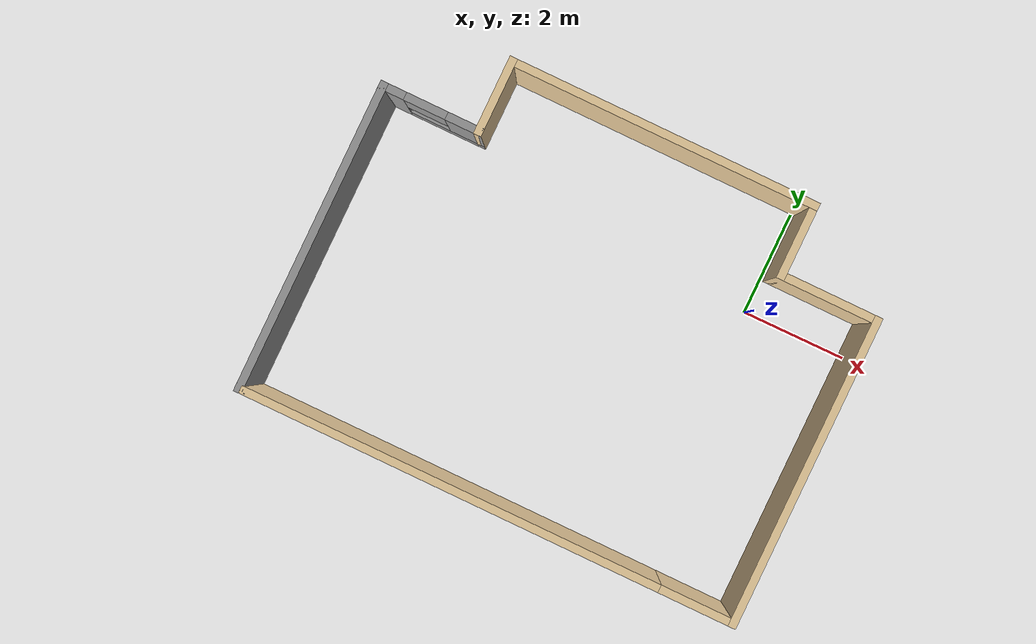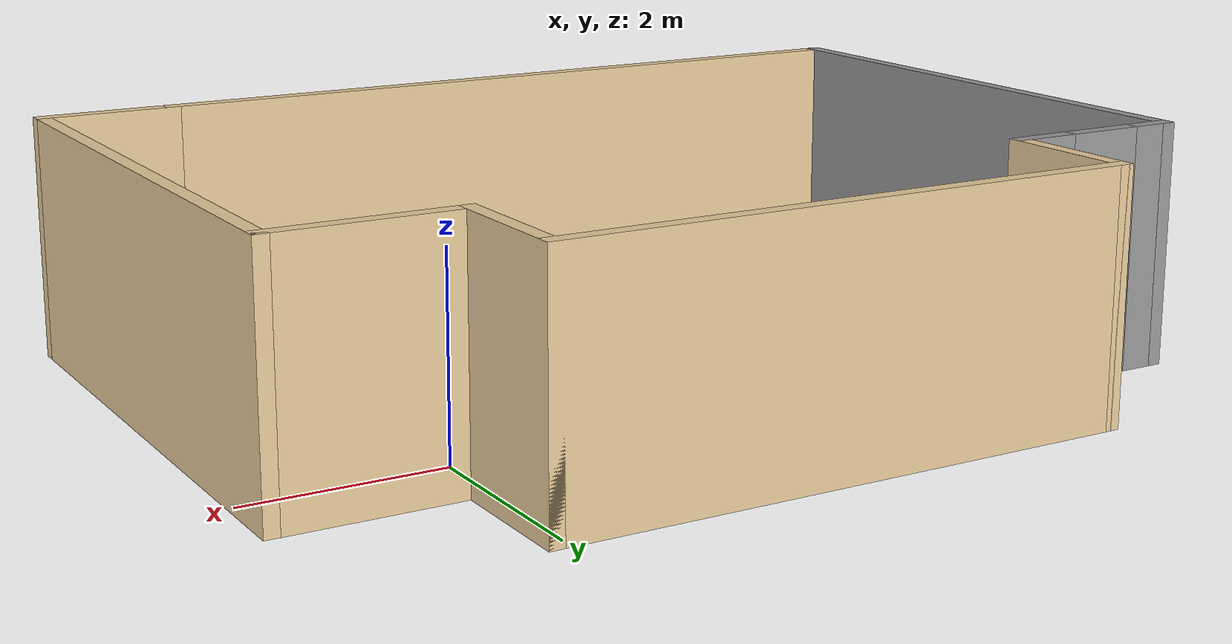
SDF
<?xml version='1.0'?>
<sdf version='1.6'>
  <model name='mybuilding'>
    <pose frame=''>-2.7919 -1.51851 0 0 -0 0</pose>
    <link name='Wall_10'>
      <collision name='Wall_10_Collision'>
        <geometry>
          <box>
            <size>6 0.15 2.5</size>
          </box>
        </geometry>
        <pose frame=''>0 0 1.25 0 -0 0</pose>
      </collision>
      <visual name='Wall_10_Visual'>
        <pose frame=''>0 0 1.25 0 -0 0</pose>
        <geometry>
          <box>
            <size>6 0.15 2.5</size>
          </box>
        </geometry>
        <material>
          <script>
            <uri>file://media/materials/scripts/gazebo.material</uri>
            <name>Gazebo/Grey</name>
          </script>
          <ambient>0.921569 0.807843 0.615686 1</ambient>
        </material>
      </visual>
      <pose frame=''>4.775 -0.674786 0 0 0 -1.5708</pose>
    </link>
    <link name='Wall_11'>
      <collision name='Wall_11_Collision'>
        <geometry>
          <box>
            <size>1.5 0.15 2.5</size>
          </box>
        </geometry>
        <pose frame=''>0 0 1.25 0 -0 0</pose>
      </collision>
      <visual name='Wall_11_Visual'>
        <pose frame=''>0 0 1.25 0 -0 0</pose>
        <geometry>
          <box>
            <size>1.5 0.15 2.5</size>
          </box>
        </geometry>
        <material>
          <script>
            <uri>file://media/materials/scripts/gazebo.material</uri>
            <name>Gazebo/Grey</name>
          </script>
          <ambient>0.921569 0.807843 0.615686 1</ambient>
        </material>
      </visual>
      <pose frame=''>4.1 -3.59979 0 0 -0 3.14159</pose>
    </link>
    <link name='Wall_12'>
      <collision name='Wall_12_Collision'>
        <geometry>
          <box>
            <size>8.25 0.15 2.5</size>
          </box>
        </geometry>
        <pose frame=''>0 0 1.25 0 -0 0</pose>
      </collision>
      <visual name='Wall_12_Visual'>
        <pose frame=''>0 0 1.25 0 -0 0</pose>
        <geometry>
          <box>
            <size>8.25 0.15 2.5</size>
          </box>
        </geometry>
        <material>
          <script>
            <uri>file://media/materials/scripts/gazebo.material</uri>
            <name>Gazebo/Grey</name>
          </script>
          <ambient>0.921569 0.807843 0.615686 1</ambient>
        </material>
      </visual>
      <pose frame=''>-0.625 -3.59979 0 0 -0 3.14159</pose>
    </link>
    <link name='Wall_13'>
      <collision name='Wall_13_Collision'>
        <geometry>
          <box>
            <size>0.15 0.15 2.5</size>
          </box>
        </geometry>
        <pose frame=''>0 0 1.25 0 -0 0</pose>
      </collision>
      <visual name='Wall_13_Visual'>
        <pose frame=''>0 0 1.25 0 -0 0</pose>
        <geometry>
          <box>
            <size>0.15 0.15 2.5</size>
          </box>
        </geometry>
        <material>
          <script>
            <uri>file://media/materials/scripts/gazebo.material</uri>
            <name>Gazebo/Grey</name>
          </script>
          <ambient>1 1 1 1</ambient>
        </material>
      </visual>
      <pose frame=''>-4.675 -3.59979 0 0 -0 0</pose>
    </link>
    <link name='Wall_14'>
      <collision name='Wall_14_Collision'>
        <geometry>
          <box>
            <size>0.25 0.15 2.5</size>
          </box>
        </geometry>
        <pose frame=''>0 0 1.25 0 -0 0</pose>
      </collision>
      <visual name='Wall_14_Visual'>
        <pose frame=''>0 0 1.25 0 -0 0</pose>
        <geometry>
          <box>
            <size>0.25 0.15 2.5</size>
          </box>
        </geometry>
        <material>
          <script>
            <uri>file://media/materials/scripts/gazebo.material</uri>
            <name>Gazebo/Grey</name>
          </script>
          <ambient>1 1 1 1</ambient>
        </material>
      </visual>
      <pose frame=''>-4.725 -3.59979 0 0 -0 3.14159</pose>
    </link>
    <link name='Wall_17'>
      <collision name='Wall_17_Collision'>
        <geometry>
          <box>
            <size>6.00085 0.15 2.5</size>
          </box>
        </geometry>
        <pose frame=''>0 0 1.25 0 -0 0</pose>
      </collision>
      <visual name='Wall_17_Visual'>
        <pose frame=''>0 0 1.25 0 -0 0</pose>
        <geometry>
          <box>
            <size>6.00085 0.15 2.5</size>
          </box>
        </geometry>
        <material>
          <script>
            <uri>file://media/materials/scripts/gazebo.material</uri>
            <name>Gazebo/Grey</name>
          </script>
          <ambient>1 1 1 1</ambient>
        </material>
      </visual>
      <pose frame=''>-4.775 -0.674786 0 0 0 -1.5708</pose>
    </link>
    <link name='Wall_19'>
      <pose frame=''>-3.85 2.25021 0 0 -0 0</pose>
      <visual name='Wall_19_Visual_0'>
        <pose frame=''>-0.750172 0 1.25 0 -0 0</pose>
        <geometry>
          <box>
            <size>0.499656 0.15 2.5</size>
          </box>
        </geometry>
        <material>
          <script>
            <uri>file://media/materials/scripts/gazebo.material</uri>
            <name>Gazebo/Grey</name>
          </script>
          <ambient>1 1 1 1</ambient>
        </material>
      </visual>
      <collision name='Wall_19_Collision_0'>
        <geometry>
          <box>
            <size>0.499656 0.15 2.5</size>
          </box>
        </geometry>
        <pose frame=''>-0.750172 0 1.25 0 -0 0</pose>
      </collision>
      <visual name='Wall_19_Visual_1'>
        <pose frame=''>0.249828 0 0.25 0 -0 0</pose>
        <geometry>
          <box>
            <size>1.50034 0.15 0.5</size>
          </box>
        </geometry>
        <material>
          <script>
            <uri>file://media/materials/scripts/gazebo.material</uri>
            <name>Gazebo/Grey</name>
          </script>
          <ambient>1 1 1 1</ambient>
        </material>
      </visual>
      <collision name='Wall_19_Collision_1'>
        <geometry>
          <box>
            <size>1.50034 0.15 0.5</size>
          </box>
        </geometry>
        <pose frame=''>0.249828 0 0.25 0 -0 0</pose>
      </collision>
      <visual name='Wall_19_Visual_2'>
        <pose frame=''>0.649828 0 1.5 0 -0 0</pose>
        <geometry>
          <box>
            <size>0.700344 0.15 2</size>
          </box>
        </geometry>
        <material>
          <script>
            <uri>file://media/materials/scripts/gazebo.material</uri>
            <name>Gazebo/Grey</name>
          </script>
          <ambient>1 1 1 1</ambient>
        </material>
      </visual>
      <collision name='Wall_19_Collision_2'>
        <geometry>
          <box>
            <size>0.700344 0.15 2</size>
          </box>
        </geometry>
        <pose frame=''>0.649828 0 1.5 0 -0 0</pose>
      </collision>
      <visual name='Wall_19_Visual_3'>
        <pose frame=''>-0.100344 0 1.9 0 -0 0</pose>
        <geometry>
          <box>
            <size>0.8 0.15 1.2</size>
          </box>
        </geometry>
        <material>
          <script>
            <uri>file://media/materials/scripts/gazebo.material</uri>
            <name>Gazebo/Grey</name>
          </script>
          <ambient>1 1 1 1</ambient>
        </material>
      </visual>
      <collision name='Wall_19_Collision_3'>
        <geometry>
          <box>
            <size>0.8 0.15 1.2</size>
          </box>
        </geometry>
        <pose frame=''>-0.100344 0 1.9 0 -0 0</pose>
      </collision>
    </link>
    <link name='Wall_6'>
      <collision name='Wall_6_Collision'>
        <geometry>
          <box>
            <size>1.5 0.15 2.5</size>
          </box>
        </geometry>
        <pose frame=''>0 0 1.25 0 -0 0</pose>
      </collision>
      <visual name='Wall_6_Visual'>
        <pose frame=''>0 0 1.25 0 -0 0</pose>
        <geometry>
          <box>
            <size>1.5 0.15 2.5</size>
          </box>
        </geometry>
        <material>
          <script>
            <uri>file://media/materials/scripts/gazebo.material</uri>
            <name>Gazebo/Grey</name>
          </script>
          <ambient>0.921569 0.807843 0.615686 1</ambient>
        </material>
      </visual>
      <pose frame=''>-2.925 2.92521 0 0 -0 1.5708</pose>
    </link>
    <link name='Wall_7'>
      <collision name='Wall_7_Collision'>
        <geometry>
          <box>
            <size>6 0.15 2.5</size>
          </box>
        </geometry>
        <pose frame=''>0 0 1.25 0 -0 0</pose>
      </collision>
      <visual name='Wall_7_Visual'>
        <pose frame=''>0 0 1.25 0 -0 0</pose>
        <geometry>
          <box>
            <size>6 0.15 2.5</size>
          </box>
        </geometry>
        <material>
          <script>
            <uri>file://media/materials/scripts/gazebo.material</uri>
            <name>Gazebo/Grey</name>
          </script>
          <ambient>0.921569 0.807843 0.615686 1</ambient>
        </material>
      </visual>
      <pose frame=''>0 3.60021 0 0 -0 0</pose>
    </link>
    <link name='Wall_8'>
      <collision name='Wall_8_Collision'>
        <geometry>
          <box>
            <size>1.5 0.15 2.5</size>
          </box>
        </geometry>
        <pose frame=''>0 0 1.25 0 -0 0</pose>
      </collision>
      <visual name='Wall_8_Visual'>
        <pose frame=''>0 0 1.25 0 -0 0</pose>
        <geometry>
          <box>
            <size>1.5 0.15 2.5</size>
          </box>
        </geometry>
        <material>
          <script>
            <uri>file://media/materials/scripts/gazebo.material</uri>
            <name>Gazebo/Grey</name>
          </script>
          <ambient>0.921569 0.807843 0.615686 1</ambient>
        </material>
      </visual>
      <pose frame=''>2.925 2.92521 0 0 0 -1.5708</pose>
    </link>
    <link name='Wall_9'>
      <collision name='Wall_9_Collision'>
        <geometry>
          <box>
            <size>2 0.15 2.5</size>
          </box>
        </geometry>
        <pose frame=''>0 0 1.25 0 -0 0</pose>
      </collision>
      <visual name='Wall_9_Visual'>
        <pose frame=''>0 0 1.25 0 -0 0</pose>
        <geometry>
          <box>
            <size>2 0.15 2.5</size>
          </box>
        </geometry>
        <material>
          <script>
            <uri>file://media/materials/scripts/gazebo.material</uri>
            <name>Gazebo/Grey</name>
          </script>
          <ambient>0.921569 0.807843 0.615686 1</ambient>
        </material>
      </visual>
      <pose frame=''>3.85 2.25021 0 0 -0 0</pose>
    </link>
    <static>1</static>
  </model>
</sdf>
